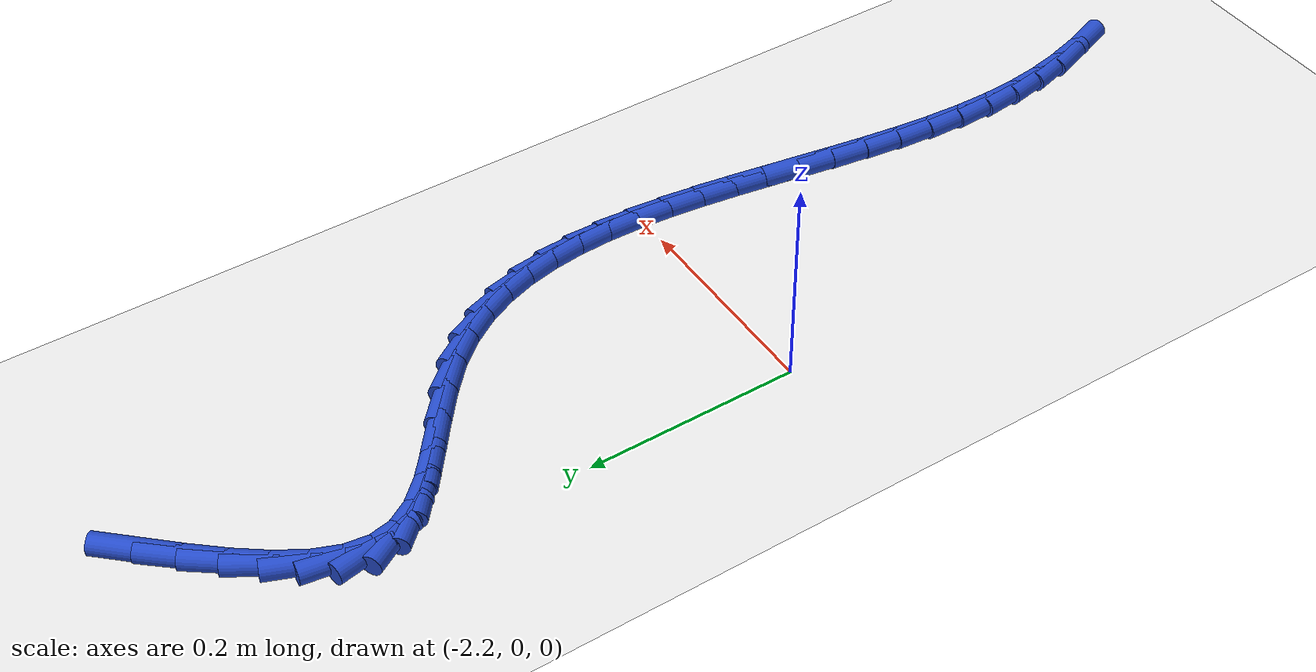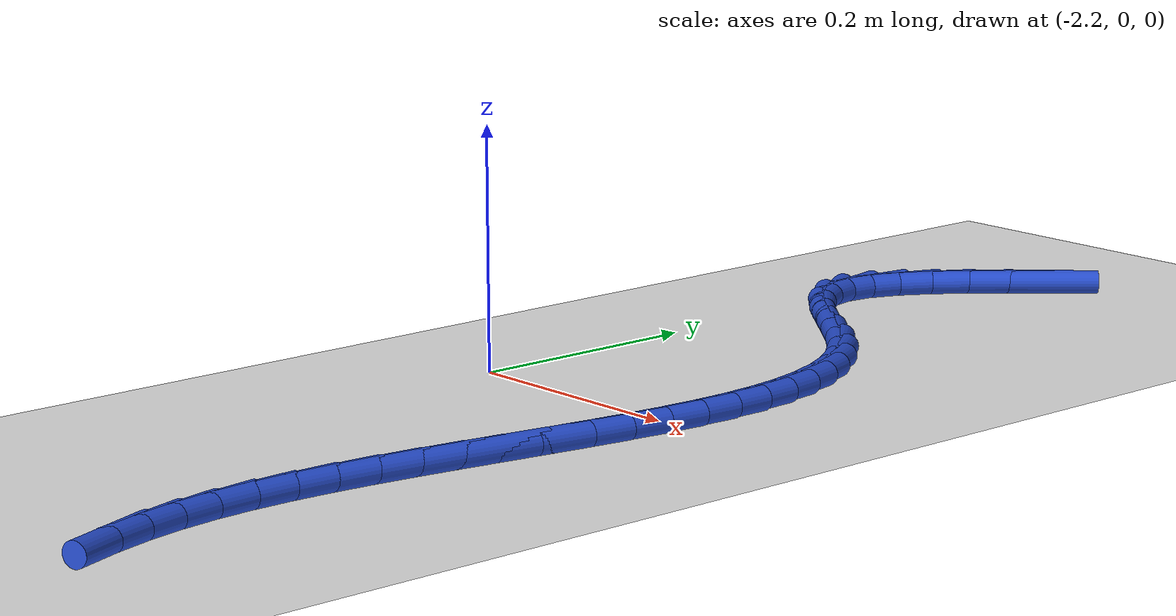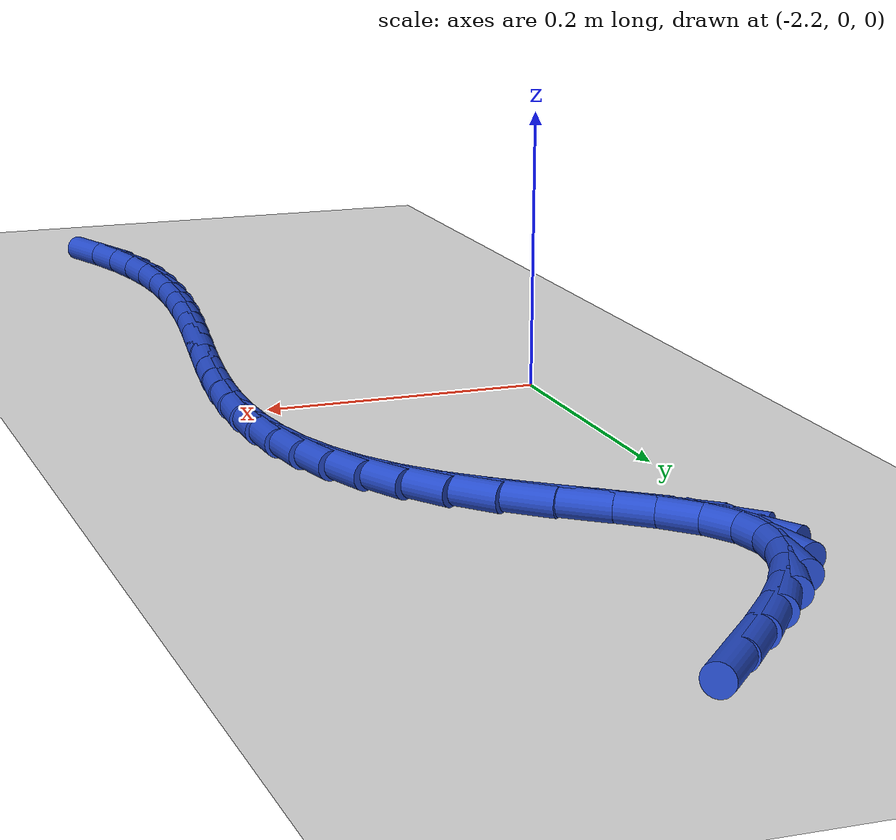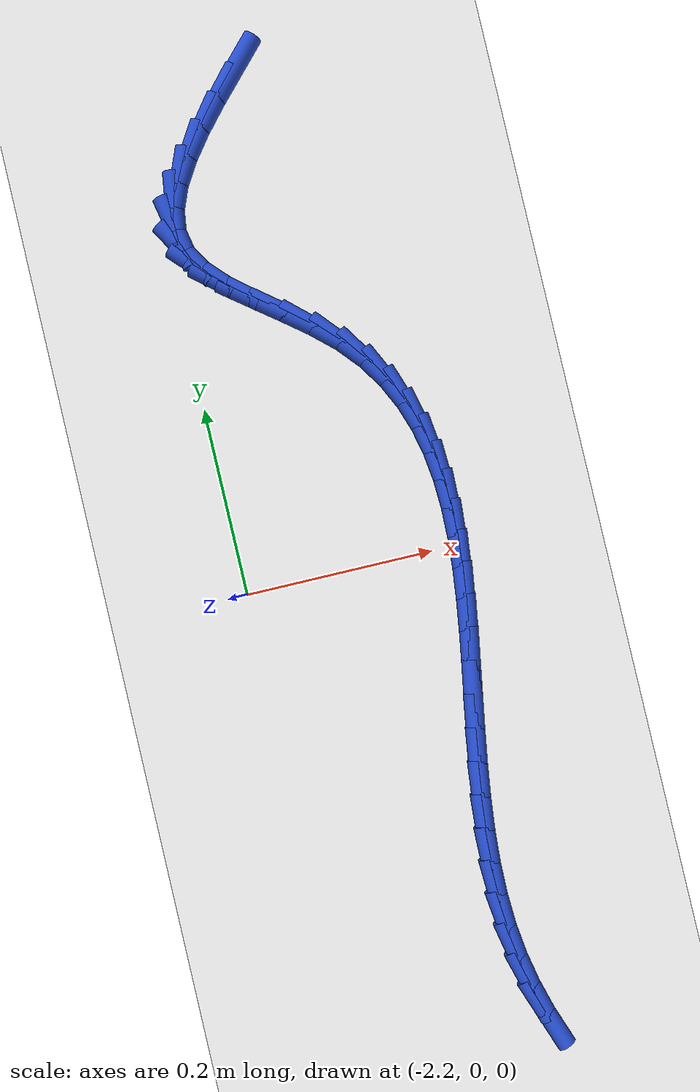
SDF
<sdf version="1.6">
 <world name="default">
  <model name="ground_plane">
   <static>1</static>
   <link name="link">
    <collision name="collision">
     <geometry><plane><normal>0 0 1</normal><size>100 100</size></plane></geometry>
     <surface><friction><ode><mu>100</mu><mu2>50</mu2></ode></friction></surface>
    </collision>
    <visual name="visual">
     <cast_shadows>0</cast_shadows>
     <geometry><plane><normal>0 0 1</normal><size>100 100</size></plane></geometry>
     <material>
      <script><uri>file://media/materials/scripts/gazebo.material</uri><name>Gazebo/WhiteGlow</name></script>
     </material>
    </visual>
   </link>
  </model>
  <model name="line">
   <link name="link_93">
    <pose>-2.0877899320714777 0.5427391518672238 0.01 0 1.57 0.8221958946424944</pose>
    <collision name="collision">
     <geometry><cylinder><radius>0.01</radius><length>0.08</length></cylinder></geometry>
    </collision>
    <visual name="visual">
     <material>
      <script><name>Gazebo/Blue</name><uri>file://media/materials/scripts/gazebo.material</uri></script>
     </material>
     <geometry><cylinder><radius>0.01</radius><length>0.08</length></cylinder></geometry>
    </visual>
   </link>
   <link name="link_94">
    <pose>-2.1133457722571385 0.5152297493055125 0.01 0 1.57 0.8583715530704245</pose>
    <collision name="collision">
     <geometry><cylinder><radius>0.01</radius><length>0.08</length></cylinder></geometry>
    </collision>
    <visual name="visual">
     <material>
      <script><name>Gazebo/Blue</name><uri>file://media/materials/scripts/gazebo.material</uri></script>
     </material>
     <geometry><cylinder><radius>0.01</radius><length>0.08</length></cylinder></geometry>
    </visual>
   </link>
   <link name="link_95">
    <pose>-2.1366183504102514 0.4882862126298686 0.01 0 1.57 0.9227580299059261</pose>
    <collision name="collision">
     <geometry><cylinder><radius>0.01</radius><length>0.08</length></cylinder></geometry>
    </collision>
    <visual name="visual">
     <material>
      <script><name>Gazebo/Blue</name><uri>file://media/materials/scripts/gazebo.material</uri></script>
     </material>
     <geometry><cylinder><radius>0.01</radius><length>0.08</length></cylinder></geometry>
    </visual>
   </link>
   <link name="link_96">
    <pose>-2.1565237742789454 0.461995014648993 0.01 0 1.57 1.0268464635745655</pose>
    <collision name="collision">
     <geometry><cylinder><radius>0.01</radius><length>0.08</length></cylinder></geometry>
    </collision>
    <visual name="visual">
     <material>
      <script><name>Gazebo/Blue</name><uri>file://media/materials/scripts/gazebo.material</uri></script>
     </material>
     <geometry><cylinder><radius>0.01</radius><length>0.08</length></cylinder></geometry>
    </visual>
   </link>
   <link name="link_97">
    <pose>-2.1719781516113508 0.4364426281715851 0.01 0 1.57 1.1892933373568553</pose>
    <collision name="collision">
     <geometry><cylinder><radius>0.01</radius><length>0.08</length></cylinder></geometry>
    </collision>
    <visual name="visual">
     <material>
      <script><name>Gazebo/Blue</name><uri>file://media/materials/scripts/gazebo.material</uri></script>
     </material>
     <geometry><cylinder><radius>0.01</radius><length>0.08</length></cylinder></geometry>
    </visual>
   </link>
   <link name="link_98">
    <pose>-2.181897590155598 0.41171552600634476 0.01 0 1.57 1.4330819475507817</pose>
    <collision name="collision">
     <geometry><cylinder><radius>0.01</radius><length>0.08</length></cylinder></geometry>
    </collision>
    <visual name="visual">
     <material>
      <script><name>Gazebo/Blue</name><uri>file://media/materials/scripts/gazebo.material</uri></script>
     </material>
     <geometry><cylinder><radius>0.01</radius><length>0.08</length></cylinder></geometry>
    </visual>
   </link>
   <link name="link_99">
    <pose>-2.1851981976598163 0.38790018096197254 0.01 0 1.57 -1.3802075813133072</pose>
    <collision name="collision">
     <geometry><cylinder><radius>0.01</radius><length>0.08</length></cylinder></geometry>
    </collision>
    <visual name="visual">
     <material>
      <script><name>Gazebo/Blue</name><uri>file://media/materials/scripts/gazebo.material</uri></script>
     </material>
     <geometry><cylinder><radius>0.01</radius><length>0.08</length></cylinder></geometry>
    </visual>
   </link>
   <link name="link_100">
    <pose>-2.180796081872136 0.36508306584716815 0.01 0 1.57 -1.0360072455257403</pose>
    <collision name="collision">
     <geometry><cylinder><radius>0.01</radius><length>0.08</length></cylinder></geometry>
    </collision>
    <visual name="visual">
     <material>
      <script><name>Gazebo/Blue</name><uri>file://media/materials/scripts/gazebo.material</uri></script>
     </material>
     <geometry><cylinder><radius>0.01</radius><length>0.08</length></cylinder></geometry>
    </visual>
   </link>
   <link name="link_101">
    <pose>-2.167895346554721 0.34330483322102257 0.01 0 1.57 -0.8099860700124183</pose>
    <collision name="collision">
     <geometry><cylinder><radius>0.01</radius><length>0.08</length></cylinder></geometry>
    </collision>
    <visual name="visual">
     <material>
      <script><name>Gazebo/Blue</name><uri>file://media/materials/scripts/gazebo.material</uri></script>
     </material>
     <geometry><cylinder><radius>0.01</radius><length>0.08</length></cylinder></geometry>
    </visual>
   </link>
   <link name="link_102">
    <pose>-2.1478627339181546 0.32226205923638546 0.01 0 1.57 -0.6968278296050119</pose>
    <collision name="collision">
     <geometry><cylinder><radius>0.01</radius><length>0.08</length></cylinder></geometry>
    </collision>
    <visual name="visual">
     <material>
      <script><name>Gazebo/Blue</name><uri>file://media/materials/scripts/gazebo.material</uri></script>
     </material>
     <geometry><cylinder><radius>0.01</radius><length>0.08</length></cylinder></geometry>
    </visual>
   </link>
   <link name="link_103">
    <pose>-2.123047820464139 0.30149495082448896 0.01 0 1.57 -0.6556055539794564</pose>
    <collision name="collision">
     <geometry><cylinder><radius>0.01</radius><length>0.08</length></cylinder></geometry>
    </collision>
    <visual name="visual">
     <material>
      <script><name>Gazebo/Blue</name><uri>file://media/materials/scripts/gazebo.material</uri></script>
     </material>
     <geometry><cylinder><radius>0.01</radius><length>0.08</length></cylinder></geometry>
    </visual>
   </link>
   <link name="link_104">
    <pose>-2.0958051162277456 0.2805429299899709 0.01 0 1.57 -0.6690165402745542</pose>
    <collision name="collision">
     <geometry><cylinder><radius>0.01</radius><length>0.08</length></cylinder></geometry>
    </collision>
    <visual name="visual">
     <material>
      <script><name>Gazebo/Blue</name><uri>file://media/materials/scripts/gazebo.material</uri></script>
     </material>
     <geometry><cylinder><radius>0.01</radius><length>0.08</length></cylinder></geometry>
    </visual>
   </link>
   <link name="link_105">
    <pose>-2.0684891312440437 0.2589454187374697 0.01 0 1.57 -0.7366019025771968</pose>
    <collision name="collision">
     <geometry><cylinder><radius>0.01</radius><length>0.08</length></cylinder></geometry>
    </collision>
    <visual name="visual">
     <material>
      <script><name>Gazebo/Blue</name><uri>file://media/materials/scripts/gazebo.material</uri></script>
     </material>
     <geometry><cylinder><radius>0.01</radius><length>0.08</length></cylinder></geometry>
    </visual>
   </link>
   <link name="link_106">
    <pose>-2.0434542672305334 0.23624186179682238 0.01 0 1.57 -0.8566601514448747</pose>
    <collision name="collision">
     <geometry><cylinder><radius>0.01</radius><length>0.08</length></cylinder></geometry>
    </collision>
    <visual name="visual">
     <material>
      <script><name>Gazebo/Blue</name><uri>file://media/materials/scripts/gazebo.material</uri></script>
     </material>
     <geometry><cylinder><radius>0.01</radius><length>0.08</length></cylinder></geometry>
    </visual>
   </link>
   <link name="link_107">
    <pose>-2.0225161678818915 0.2120847361916949 0.01 0 1.57 -0.989317746415309</pose>
    <collision name="collision">
     <geometry><cylinder><radius>0.01</radius><length>0.08</length></cylinder></geometry>
    </collision>
    <visual name="visual">
     <material>
      <script><name>Gazebo/Blue</name><uri>file://media/materials/scripts/gazebo.material</uri></script>
     </material>
     <geometry><cylinder><radius>0.01</radius><length>0.08</length></cylinder></geometry>
    </visual>
   </link>
   <link name="link_108">
    <pose>-2.0057010182794164 0.1865019502214119 0.01 0 1.57 -1.1195439592519902</pose>
    <collision name="collision">
     <geometry><cylinder><radius>0.01</radius><length>0.08</length></cylinder></geometry>
    </collision>
    <visual name="visual">
     <material>
      <script><name>Gazebo/Blue</name><uri>file://media/materials/scripts/gazebo.material</uri></script>
     </material>
     <geometry><cylinder><radius>0.01</radius><length>0.08</length></cylinder></geometry>
    </visual>
   </link>
   <link name="link_109">
    <pose>-1.9926639576102838 0.15959925820661341 0.01 0 1.57 -1.2416523824355041</pose>
    <collision name="collision">
     <geometry><cylinder><radius>0.01</radius><length>0.08</length></cylinder></geometry>
    </collision>
    <visual name="visual">
     <material>
      <script><name>Gazebo/Blue</name><uri>file://media/materials/scripts/gazebo.material</uri></script>
     </material>
     <geometry><cylinder><radius>0.01</radius><length>0.08</length></cylinder></geometry>
    </visual>
   </link>
   <link name="link_110">
    <pose>-1.9830601250616697 0.13148241446793849 0.01 0 1.57 -1.3514438115761338</pose>
    <collision name="collision">
     <geometry><cylinder><radius>0.01</radius><length>0.08</length></cylinder></geometry>
    </collision>
    <visual name="visual">
     <material>
      <script><name>Gazebo/Blue</name><uri>file://media/materials/scripts/gazebo.material</uri></script>
     </material>
     <geometry><cylinder><radius>0.01</radius><length>0.08</length></cylinder></geometry>
    </visual>
   </link>
   <link name="link_111">
    <pose>-1.9765446598207494 0.10225717332602734 0.01 0 1.57 -1.4466539353076675</pose>
    <collision name="collision">
     <geometry><cylinder><radius>0.01</radius><length>0.08</length></cylinder></geometry>
    </collision>
    <visual name="visual">
     <material>
      <script><name>Gazebo/Blue</name><uri>file://media/materials/scripts/gazebo.material</uri></script>
     </material>
     <geometry><cylinder><radius>0.01</radius><length>0.08</length></cylinder></geometry>
    </visual>
   </link>
   <link name="link_112">
    <pose>-1.9727727010746998 0.07202928910151922 0.01 0 1.57 -1.5267020966299245</pose>
    <collision name="collision">
     <geometry><cylinder><radius>0.01</radius><length>0.08</length></cylinder></geometry>
    </collision>
    <visual name="visual">
     <material>
      <script><name>Gazebo/Blue</name><uri>file://media/materials/scripts/gazebo.material</uri></script>
     </material>
     <geometry><cylinder><radius>0.01</radius><length>0.08</length></cylinder></geometry>
    </visual>
   </link>
   <link name="link_113">
    <pose>-1.9713993880106973 0.04090451611505371 0.01 0 1.57 1.5494787839268684</pose>
    <collision name="collision">
     <geometry><cylinder><radius>0.01</radius><length>0.08</length></cylinder></geometry>
    </collision>
    <visual name="visual">
     <material>
      <script><name>Gazebo/Blue</name><uri>file://media/materials/scripts/gazebo.material</uri></script>
     </material>
     <geometry><cylinder><radius>0.01</radius><length>0.08</length></cylinder></geometry>
    </visual>
   </link>
   <link name="link_114">
    <pose>-1.9720798598159164 0.008988608687269632 0.01 0 1.57 1.497635680258549</pose>
    <collision name="collision">
     <geometry><cylinder><radius>0.01</radius><length>0.08</length></cylinder></geometry>
    </collision>
    <visual name="visual">
     <material>
      <script><name>Gazebo/Blue</name><uri>file://media/materials/scripts/gazebo.material</uri></script>
     </material>
     <geometry><cylinder><radius>0.01</radius><length>0.08</length></cylinder></geometry>
    </visual>
   </link>
   <link name="link_115">
    <pose>-1.974469255677534 -0.023612678861191904 0.01 0 1.57 1.4581541381076504</pose>
    <collision name="collision">
     <geometry><cylinder><radius>0.01</radius><length>0.08</length></cylinder></geometry>
    </collision>
    <visual name="visual">
     <material>
      <script><name>Gazebo/Blue</name><uri>file://media/materials/scripts/gazebo.material</uri></script>
     </material>
     <geometry><cylinder><radius>0.01</radius><length>0.08</length></cylinder></geometry>
    </visual>
   </link>
   <link name="link_116">
    <pose>-1.9782227147827267 -0.05679359220969207 0.01 0 1.57 1.4299233940398557</pose>
    <collision name="collision">
     <geometry><cylinder><radius>0.01</radius><length>0.08</length></cylinder></geometry>
    </collision>
    <visual name="visual">
     <material>
      <script><name>Gazebo/Blue</name><uri>file://media/materials/scripts/gazebo.material</uri></script>
     </material>
     <geometry><cylinder><radius>0.01</radius><length>0.08</length></cylinder></geometry>
    </visual>
   </link>
   <link name="link_117">
    <pose>-1.982995376318669 -0.09044837703759127 0.01 0 1.57 1.4120453806637543</pose>
    <collision name="collision">
     <geometry><cylinder><radius>0.01</radius><length>0.08</length></cylinder></geometry>
    </collision>
    <visual name="visual">
     <material>
      <script><name>Gazebo/Blue</name><uri>file://media/materials/scripts/gazebo.material</uri></script>
     </material>
     <geometry><cylinder><radius>0.01</radius><length>0.08</length></cylinder></geometry>
    </visual>
   </link>
   <link name="link_118">
    <pose>-1.988442379472538 -0.12447127902425087 0.01 0 1.57 1.4038809372665564</pose>
    <collision name="collision">
     <geometry><cylinder><radius>0.01</radius><length>0.08</length></cylinder></geometry>
    </collision>
    <visual name="visual">
     <material>
      <script><name>Gazebo/Blue</name><uri>file://media/materials/scripts/gazebo.material</uri></script>
     </material>
     <geometry><cylinder><radius>0.01</radius><length>0.08</length></cylinder></geometry>
    </visual>
   </link>
   <link name="link_119">
    <pose>-1.9942188634315103 -0.15875654384902949 0.01 0 1.57 1.4050603466437823</pose>
    <collision name="collision">
     <geometry><cylinder><radius>0.01</radius><length>0.08</length></cylinder></geometry>
    </collision>
    <visual name="visual">
     <material>
      <script><name>Gazebo/Blue</name><uri>file://media/materials/scripts/gazebo.material</uri></script>
     </material>
     <geometry><cylinder><radius>0.01</radius><length>0.08</length></cylinder></geometry>
    </visual>
   </link>
   <link name="link_120">
    <pose>-1.9999799673827603 -0.19319841719128836 0.01 0 1.57 1.4154776962813533</pose>
    <collision name="collision">
     <geometry><cylinder><radius>0.01</radius><length>0.08</length></cylinder></geometry>
    </collision>
    <visual name="visual">
     <material>
      <script><name>Gazebo/Blue</name><uri>file://media/materials/scripts/gazebo.material</uri></script>
     </material>
     <geometry><cylinder><radius>0.01</radius><length>0.08</length></cylinder></geometry>
    </visual>
   </link>
   <link name="link_121">
    <pose>-2.0053808305134653 -0.22769114473038804 0.01 0 1.57 1.4352773326935457</pose>
    <collision name="collision">
     <geometry><cylinder><radius>0.01</radius><length>0.08</length></cylinder></geometry>
    </collision>
    <visual name="visual">
     <material>
      <script><name>Gazebo/Blue</name><uri>file://media/materials/scripts/gazebo.material</uri></script>
     </material>
     <geometry><cylinder><radius>0.01</radius><length>0.08</length></cylinder></geometry>
    </visual>
   </link>
   <link name="link_122">
    <pose>-2.0100765920108006 -0.26212897214568975 0.01 0 1.57 1.4648324133812802</pose>
    <collision name="collision">
     <geometry><cylinder><radius>0.01</radius><length>0.08</length></cylinder></geometry>
    </collision>
    <visual name="visual">
     <material>
      <script><name>Gazebo/Blue</name><uri>file://media/materials/scripts/gazebo.material</uri></script>
     </material>
     <geometry><cylinder><radius>0.01</radius><length>0.08</length></cylinder></geometry>
    </visual>
   </link>
   <link name="link_123">
    <pose>-2.0137223910619424 -0.29640614511655217 0.01 0 1.57 1.504708493483974</pose>
    <collision name="collision">
     <geometry><cylinder><radius>0.01</radius><length>0.08</length></cylinder></geometry>
    </collision>
    <visual name="visual">
     <material>
      <script><name>Gazebo/Blue</name><uri>file://media/materials/scripts/gazebo.material</uri></script>
     </material>
     <geometry><cylinder><radius>0.01</radius><length>0.08</length></cylinder></geometry>
    </visual>
   </link>
   <link name="link_124">
    <pose>-2.015973366854067 -0.33041690932233647 0.01 0 1.57 1.555597943546204</pose>
    <collision name="collision">
     <geometry><cylinder><radius>0.01</radius><length>0.08</length></cylinder></geometry>
    </collision>
    <visual name="visual">
     <material>
      <script><name>Gazebo/Blue</name><uri>file://media/materials/scripts/gazebo.material</uri></script>
     </material>
     <geometry><cylinder><radius>0.01</radius><length>0.08</length></cylinder></geometry>
    </visual>
   </link>
   <link name="link_125">
    <pose>-2.0164846585743494 -0.3640555104424032 0.01 0 1.57 -1.5233885479383584</pose>
    <collision name="collision">
     <geometry><cylinder><radius>0.01</radius><length>0.08</length></cylinder></geometry>
    </collision>
    <visual name="visual">
     <material>
      <script><name>Gazebo/Blue</name><uri>file://media/materials/scripts/gazebo.material</uri></script>
     </material>
     <geometry><cylinder><radius>0.01</radius><length>0.08</length></cylinder></geometry>
    </visual>
   </link>
   <link name="link_126">
    <pose>-2.014911405409967 -0.3972161941561136 0.01 0 1.57 -1.4492533027522592</pose>
    <collision name="collision">
     <geometry><cylinder><radius>0.01</radius><length>0.08</length></cylinder></geometry>
    </collision>
    <visual name="visual">
     <material>
      <script><name>Gazebo/Blue</name><uri>file://media/materials/scripts/gazebo.material</uri></script>
     </material>
     <geometry><cylinder><radius>0.01</radius><length>0.08</length></cylinder></geometry>
    </visual>
   </link>
   <link name="link_127">
    <pose>-2.0109321335296895 -0.4297944331312339 0.01 0 1.57 -1.3718353294935113</pose>
    <collision name="collision">
     <geometry><cylinder><radius>0.01</radius><length>0.08</length></cylinder></geometry>
    </collision>
    <visual name="visual">
     <material>
      <script><name>Gazebo/Blue</name><uri>file://media/materials/scripts/gazebo.material</uri></script>
     </material>
     <geometry><cylinder><radius>0.01</radius><length>0.08</length></cylinder></geometry>
    </visual>
   </link>
   <link name="link_128">
    <pose>-2.004499048036316 -0.4617000584886776 0.01 0 1.57 -1.2967561006759671</pose>
    <collision name="collision">
     <geometry><cylinder><radius>0.01</radius><length>0.08</length></cylinder></geometry>
    </collision>
    <visual name="visual">
     <material>
      <script><name>Gazebo/Blue</name><uri>file://media/materials/scripts/gazebo.material</uri></script>
     </material>
     <geometry><cylinder><radius>0.01</radius><length>0.08</length></cylinder></geometry>
    </visual>
   </link>
   <link name="link_129">
    <pose>-1.9957417820977705 -0.4928522100400999 0.01 0 1.57 -1.2242382158755813</pose>
    <collision name="collision">
     <geometry><cylinder><radius>0.01</radius><length>0.08</length></cylinder></geometry>
    </collision>
    <visual name="visual">
     <material>
      <script><name>Gazebo/Blue</name><uri>file://media/materials/scripts/gazebo.material</uri></script>
     </material>
     <geometry><cylinder><radius>0.01</radius><length>0.08</length></cylinder></geometry>
    </visual>
   </link>
  </model>
 </world>
</sdf>
